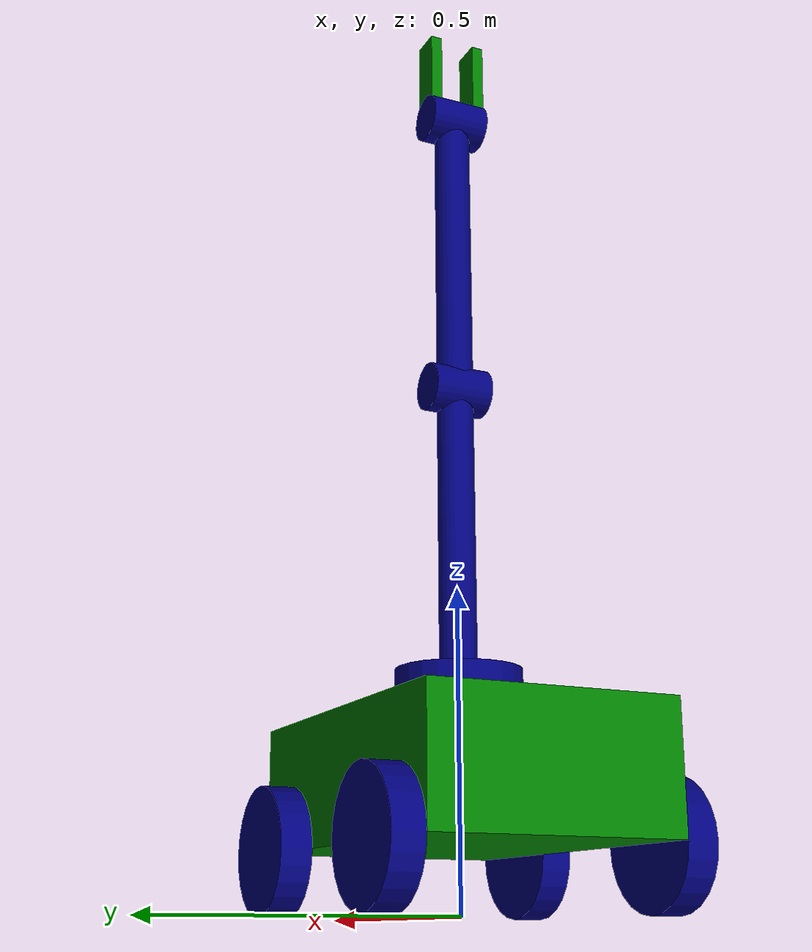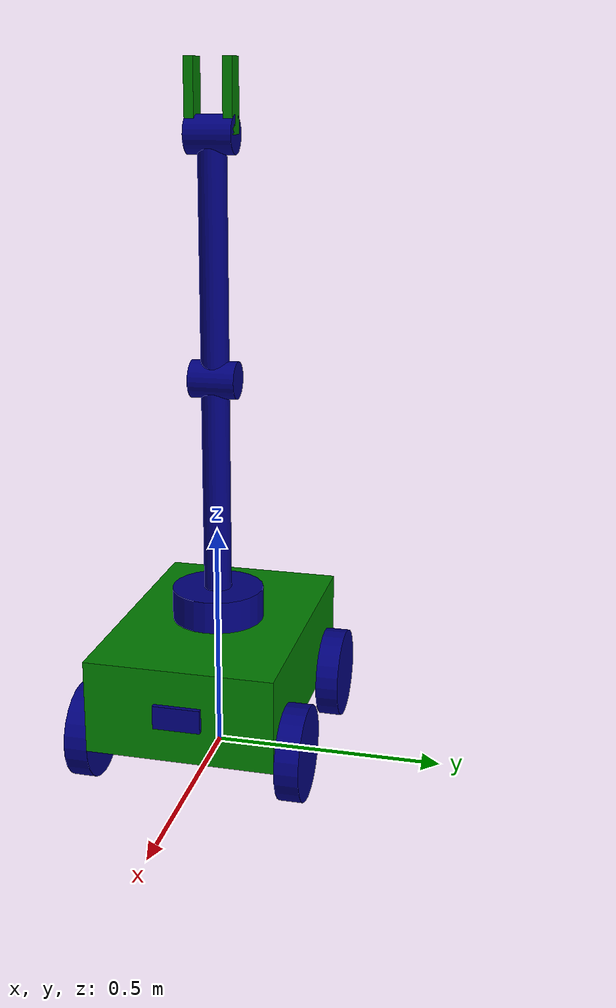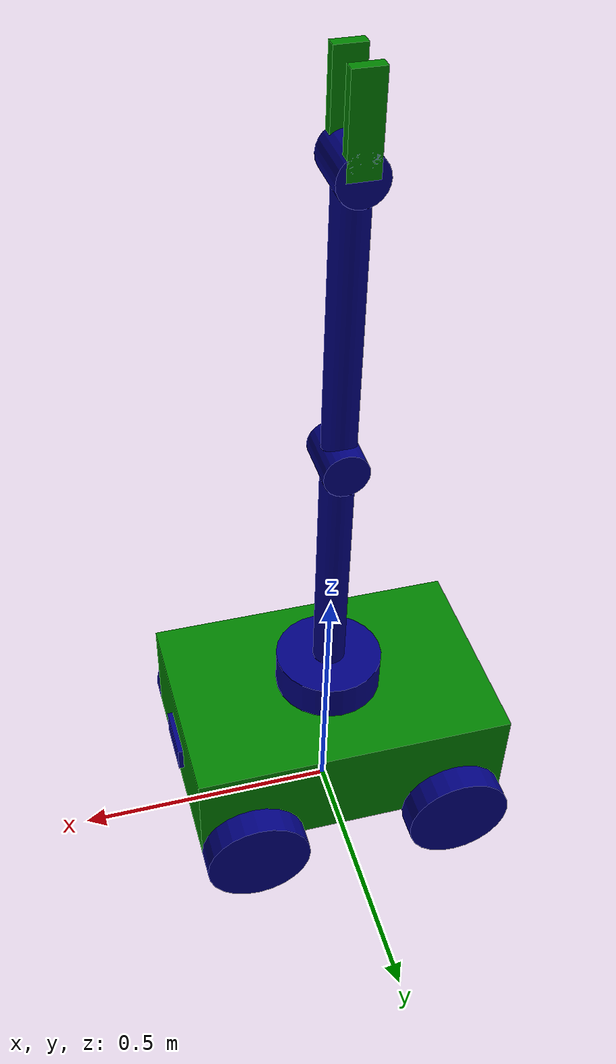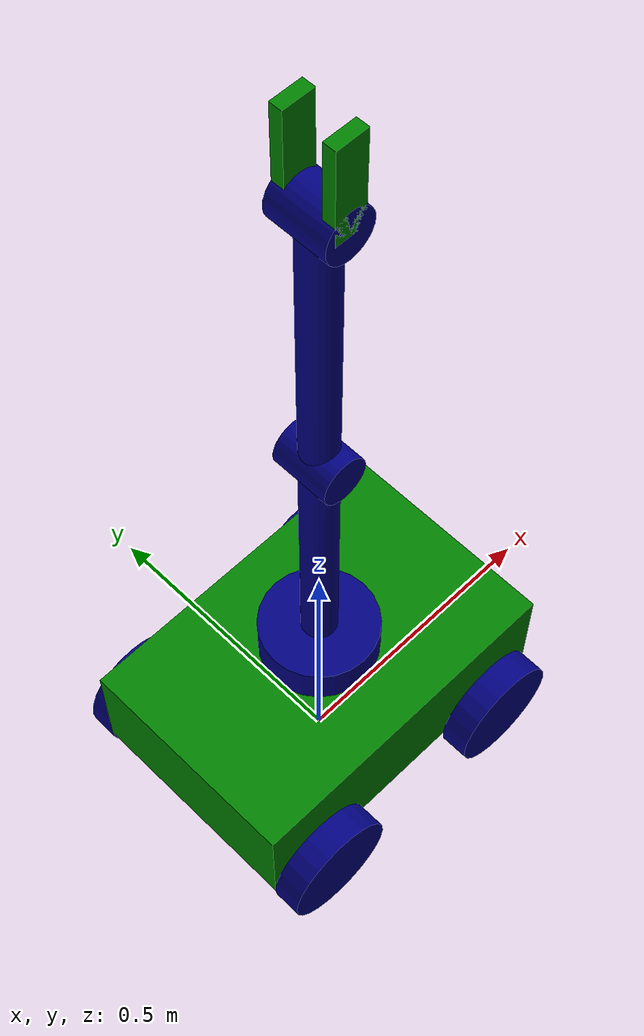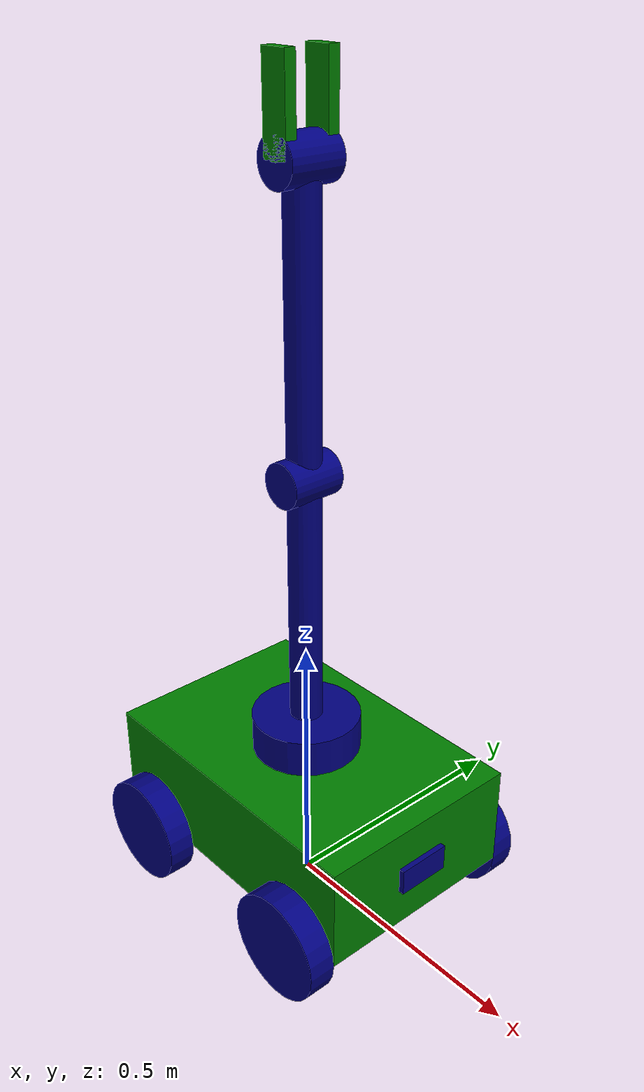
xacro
<?xml version="1.0"?>
<robot name="my_robot" xmlns:xacro="http://www.ros.org/wiki/xacro">

    <xacro:include filename="common_properties.xacro" />
    <xacro:include filename="bot_base.xacro" />
    <xacro:include filename="bot_base_gazebo.xacro" />
    <xacro:include filename="camera.xacro" />

</robot>

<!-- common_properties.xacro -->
<robot xmlns:xacro="http://www.ros.org/wiki/xacro">

    <material name="green">
        <color rgba="0 0.5 0 1" />
    </material>

    <material name="blue">
        <color rgba="0 0 0.5 1" />
    </material>

    <xacro:macro name="box_inertia" params="m l w h xyz rpy">
        <inertial>
            <origin xyz="${xyz}" rpy="${rpy}" />
            <mass value="${m}" />
            <inertia ixx="${(1/12)*m*(h*h + l*l)}" iyy="${(1/12)*m*(w*w + l*l)}" izz="${(1/12)*m*(w*w + h*h)}" ixy="0" ixz="0" iyz="0" />
        </inertial>
    </xacro:macro>

    <xacro:macro name="wheel_inertia" params="m r h xyz rpy">
        <inertial>
            <origin xyz="${xyz}" rpy="${rpy}" />
            <mass value="${m}" />
            <inertia ixx="${(1/12)*m*(3*r*r + h*h)}" iyy="${(1/12)*m*(3*r*r + h*h)}" izz="${(1/2)*m*r*r}" ixy="0" ixz="0" iyz="0" />
        </inertial>
    </xacro:macro>

    <xacro:macro name="caster_wheel_inertia" params="m r xyz rpy">
        <inertial>
            <origin xyz="${xyz}" rpy="${rpy}" />
            <mass value="${m}" />
            <inertia ixx="${(2/5)*m*(r*r)}" iyy="${(2/5)*m*(r*r)}" izz="${(2/5)*m*(r*r)}" ixy="0" ixz="0" iyz="0" />
        </inertial>
    </xacro:macro>
</robot>

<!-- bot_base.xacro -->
<robot xmlns:xacro="http://www.ros.org/wiki/xacro">

    <xacro:property name="base_length" value="0.6" />
    <xacro:property name="base_width" value="0.4" />
    <xacro:property name="base_height" value="0.2" />

    <xacro:property name="cyl_radius" value="0.1" />
    <xacro:property name="cyl_len" value="0.05" />

    <xacro:property name="sph_radius" value="0.05" />

    <xacro:property name="arm_base_radius" value="0.1" />
    <xacro:property name="arm_base_length" value="0.07" />
    <xacro:property name="arm_length" value="0.5" />
    <xacro:property name="third_arm_length" value="0.025" />
    <xacro:property name="arm_radius" value="0.03" />

    <xacro:property name="arm_link_cyl_len" value="0.1" />
    <xacro:property name="arm_link_cyl_radius" value="0.04" />

    <xacro:property name="gripper_base_length" value="0.15" />
    <xacro:property name="gripper_base_width" value="0.05" />
    <xacro:property name="gripper_base_height" value="0.02" />

    <link name="base_footprint" />

    <link name="base_link">
        <visual>
            <geometry>
                <box size="${base_length} ${base_width} ${base_height}" />
            </geometry>
            <origin xyz="0 0 0" rpy="0 0 0" />
            <material name="green" />
        </visual>

        <collision>
            <geometry>
                <box size="${base_length} ${base_width} ${base_height}" />
            </geometry>
            <origin xyz="0 0 0" rpy="0 0 0" />
        </collision>

        <xacro:box_inertia m="5.0" l="${2*base_length}" w="${2*base_width}" h="${2*base_height}" xyz="0 0 0" rpy="0 0 0" />
    </link>

    <link name="arm_base_link">
        <visual>
            <geometry>
                <cylinder radius="${arm_base_radius}" length="${arm_base_length}" />
            </geometry>
            <origin xyz="0 0 0" rpy="0 0 0" />
            <material name="blue" />
        </visual>

        <collision>
            <geometry>
                <cylinder radius="${arm_base_radius}" length="${arm_base_length}" />
            </geometry>
            <origin xyz="0 0 0" rpy="0 0 0" />
        </collision>

        <xacro:wheel_inertia m="0.5" r="${2*arm_base_radius}" h="${2*arm_base_length}" xyz="0 0 0" rpy="0 0 0" />
    </link>

    <xacro:macro name="wheel_link" params="prefix">
        <link name="${prefix}_wheel_link">
        <visual>
            <geometry>
                <cylinder radius="${cyl_radius}" length="${cyl_len}" />
            </geometry>
            <origin xyz="0 0 0" rpy="0 0 0" />
            <material name="blue" />
        </visual>

        <collision>
            <geometry>
                <cylinder radius="${cyl_radius}" length="${cyl_len}" />
            </geometry>
            <origin xyz="0 0 0" rpy="0 0 0" />
        </collision>

        <xacro:wheel_inertia m="1.0" r="${2*cyl_radius}" h="${2*cyl_len}" xyz="0 0 0" rpy="0 0 0" />
    </link>
    </xacro:macro>

    <xacro:macro name="arm_link" params="postfix l">
        <link name="arm_link_${postfix}">
        <visual>
            <geometry>
                <cylinder radius="${arm_radius}" length="${l}" />
            </geometry>
            <origin xyz="0 0 ${(l/2)}" rpy="0 0 0" />
            <material name="blue" />
        </visual>

        <collision>
            <geometry>
                <cylinder radius="${arm_radius}" length="${l}" />
            </geometry>
            <origin xyz="0 0 0" rpy="0 0 0" />
        </collision>

        <xacro:wheel_inertia m="0.3" r="${2*arm_radius}" h="${2*l}" xyz="0 0 0" rpy="0 0 0" />
    </link>
    </xacro:macro>

    <xacro:macro name="arm_joint_link" params="postfix">
        <link name="arm_joint_link_${postfix}">
        <visual>
            <geometry>
                <cylinder radius="${arm_link_cyl_radius}" length="${arm_link_cyl_len}" />
            </geometry>
            <origin xyz="0 0 0" rpy="0 0 0" />
            <material name="blue" />
        </visual>

        <collision>
            <geometry>
                <cylinder radius="${arm_link_cyl_radius}" length="${arm_link_cyl_len}" />
            </geometry>
            <origin xyz="0 0 0" rpy="0 0 0" />
        </collision>

        <xacro:wheel_inertia m="0.3" r="${2*arm_link_cyl_radius}" h="${2*arm_link_cyl_len}" xyz="0 0 0" rpy="0 0 0" />
    </link>
    </xacro:macro>

    <xacro:arm_joint_link postfix="first" />
    <xacro:arm_joint_link postfix="second" />

    <xacro:arm_link postfix="first" l="${arm_length}" />
    <xacro:arm_link postfix="second" l="${arm_length}" />

    <xacro:wheel_link prefix="right" />
    <xacro:wheel_link prefix="left" />
    <xacro:wheel_link prefix="front_left" />
    <xacro:wheel_link prefix="front_right" />

    <xacro:macro name="gripper" params="prefix">
        <link name="${prefix}_gripper">
        <visual>
            <geometry>
                <box size="${gripper_base_length} ${gripper_base_width} ${gripper_base_height}" />
            </geometry>
            <origin xyz="${-(gripper_base_length/2)} 0 0" rpy="0 0 0" />
            <material name="green" />
        </visual>

        <collision>
            <geometry>
                <box size="${gripper_base_length} ${gripper_base_width} ${gripper_base_height}" />
            </geometry>
            <origin xyz="${-(gripper_base_length/2)} 0 0" rpy="0 0 0" />
        </collision>

        <xacro:box_inertia m="0.2" l="${2*gripper_base_length}" w="${2*gripper_base_width}" h="${2*gripper_base_height}" xyz="0 0 0" rpy="0 0 0" />
    </link>
    </xacro:macro>

    <xacro:gripper prefix="right" />
    <xacro:gripper prefix="left" />

    <joint name="base_joint" type="fixed">
        <parent link="base_footprint" />
        <child link="base_link" />
        <origin xyz="0 0 ${base_height}" rpy="0 0 0" />
    </joint>

    <joint name="base_right_wheel_joint" type="continuous">
        <parent link="base_link" />
        <child link="right_wheel_link" />
        <origin xyz="${-((base_length/2) - cyl_radius)} ${-((base_width/2) + (cyl_len/2))} ${-(base_height/2)}" rpy="${pi / 2.0} 0 0" />
        <axis xyz="0 0 1" />
    </joint>

    <joint name="base_left_wheel_joint" type="continuous">
        <parent link="base_link" />
        <child link="left_wheel_link" />
        <origin xyz="${-((base_length/2) - cyl_radius)} ${(base_width/2) + (cyl_len/2)} ${-(base_height/2)}" rpy="${pi / 2.0} 0 0" />
        <axis xyz="0 0 1" />
    </joint>

    <joint name="base_front_left_wheel_joint" type="continuous">
        <parent link="base_link" />
        <child link="front_left_wheel_link" />
        <origin xyz="${((base_length/2) - cyl_radius)} ${(base_width/2) + (cyl_len/2)} ${-(base_height/2)}" rpy="${pi / 2.0} 0 0" />
        <axis xyz="0 0 1" />
    </joint>

    <joint name="base_front_right_wheel_joint" type="continuous">
        <parent link="base_link" />
        <child link="front_right_wheel_link" />
        <origin xyz="${((base_length/2) - cyl_radius)} ${-((base_width/2) + (cyl_len/2))} ${-(base_height/2)}" rpy="${pi / 2.0} 0 0" />
        <axis xyz="0 0 1" />
    </joint>

    <joint name="base_arm_base_joint" type="continuous">
        <parent link="base_link" />
        <child link="arm_base_link" />
        <origin xyz="0 0 ${(base_height/2) + (arm_base_length/2)}" rpy="0 0 0" />
        <axis xyz="0 0 1" />
    </joint>

    <joint name="base_arm_first_joint" type="revolute">
        <parent link="arm_base_link" />
        <child link="arm_link_first" />
        <origin xyz="0 0 0" rpy="0 0 0" />
        <axis xyz="0 1 0" />
        <limit lower="${-(pi/2)}" upper="${pi/2}" effort="100" velocity="100" />
    </joint>

    <joint name="arm_link_first_rev_joint" type="fixed">
        <parent link="arm_link_first" />
        <child link="arm_joint_link_first" />
        <origin xyz="0 0 ${arm_length}" rpy="${pi / 2.0} 0 0" />
    </joint>

    <joint name="second_arm_link_joint" type="continuous">
        <parent link="arm_joint_link_first" />
        <child link="arm_link_second" />
        <origin xyz="0 0 0" rpy="${-(pi / 2.0)} 0 0" />
        <axis xyz="0 1 0" />
    </joint>

    <joint name="arm_link_second_rev_joint" type="continuous">
        <parent link="arm_link_second" />
        <child link="arm_joint_link_second" />
        <origin xyz="0 0 ${arm_length}" rpy="${pi / 2.0} 0 0" />
        <axis xyz="0 0 1" />
    </joint>

    <joint name="gripper_right_joint" type="continuous">
        <parent link="arm_joint_link_second" />
        <child link="right_gripper" />
        <origin xyz="0 0 ${((arm_link_cyl_len/2)-(gripper_base_height/2))}" rpy="0 0 ${-(pi / 2.0)}" />
        <axis xyz="0 1 0" />
    </joint>

    <joint name="gripper_left_joint" type="continuous">
        <parent link="arm_joint_link_second" />
        <child link="left_gripper" />
        <origin xyz="0 0 ${-((arm_link_cyl_len/2)-(gripper_base_height/2))}" rpy="0 0 ${-(pi / 2.0)}" />
        <axis xyz="0 1 0" />
    </joint>

</robot>

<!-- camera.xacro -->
<robot xmlns:xacro="http://www.ros.org/wiki/xacro">

    <xacro:property name="camera_base_length" value="0.01" />
    <xacro:property name="camera_base_width" value="0.1" />
    <xacro:property name="camera_base_height" value="0.05" />

    <link name="camera_link">
        <visual>
            <geometry>
                <box size="${camera_base_length} ${camera_base_width} ${camera_base_height}" />
            </geometry>
            <origin xyz="0 0 0" rpy="0 0 0" />
            <material name="blue" />
        </visual>

        <collision>
            <geometry>
                <box size="${camera_base_length} ${camera_base_width} ${camera_base_height}" />
            </geometry>
            <origin xyz="0 0 0" rpy="0 0 0" />
        </collision>

        <xacro:box_inertia m="0.1" l="${2*camera_base_length}" w="${2*camera_base_width}" h="${2*camera_base_height}" xyz="0 0 0" rpy="0 0 0" />
    </link>

    <joint name="camera_base_link_joint" type="fixed">
        <parent link="base_link" />
        <child link="camera_link" />
        <origin xyz="${(base_length/2) + (camera_base_length/2)} 0 0" rpy="0 0 0" />
    </joint>

    <gazebo reference="camera_link">
        <material>Gazebo/Red</material>
        <sensor name="camera_sensor" type="camera">
            <pose>0 0 0 0 0 0</pose>
            <visualize>true</visualize>
            <update_rate>10.0</update_rate>
            <plugin name="camera_controller" filename="libgazebo_ros_camera.so">
                <frame_name>camera_link</frame_name>
            </plugin>
        </sensor>
    </gazebo>
</robot>
